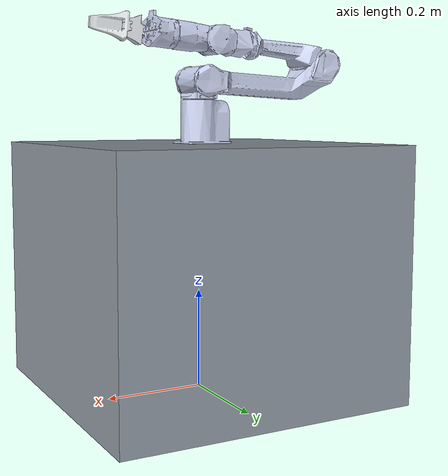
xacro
<?xml version="1.0"?>
<!--
  Gazebo-ready Piper arm + gripper with gz_ros2_control hooks.
  All mesh refs use absolute file:// paths so it works without ROS package install.
-->
<robot name="piper_gz" xmlns:xacro="http://www.ros.org/wiki/xacro">

  <xacro:arg name="prefix" default=""/>
  <xacro:property name="MESH" value="file:///data/nedo/sim/assets/piper_isaac_sim/piper_description/meshes"/>

  <xacro:property name="effort_limit" value="100"/>
  <xacro:property name="velocity_limit" value="2.5"/>

  <xacro:property name="j1_lo" value="-2.618"/>
  <xacro:property name="j1_hi" value="2.618"/>
  <xacro:property name="j2_lo" value="0"/>
  <xacro:property name="j2_hi" value="3.14"/>
  <xacro:property name="j3_lo" value="-2.967"/>
  <xacro:property name="j3_hi" value="0"/>
  <xacro:property name="j4_lo" value="-1.745"/>
  <xacro:property name="j4_hi" value="1.745"/>
  <xacro:property name="j5_lo" value="-1.22"/>
  <xacro:property name="j5_hi" value="1.22"/>
  <xacro:property name="j6_lo" value="-2.0944"/>
  <xacro:property name="j6_hi" value="2.0944"/>

  <xacro:property name="grip_stroke" value="0.04"/>

  <!-- root: pedestal (proxy for Mobile Mover) -->
  <link name="world"/>

  <link name="pedestal">
    <inertial>
      <origin xyz="0 0 0.25" rpy="0 0 0"/>
      <mass value="40"/>
      <inertia ixx="2.0" ixy="0" ixz="0" iyy="2.0" iyz="0" izz="2.0"/>
    </inertial>
    <visual>
      <origin xyz="0 0 0.25" rpy="0 0 0"/>
      <geometry>
        <box size="0.6 0.6 0.5"/>
      </geometry>
      <material name="mm_silver">
        <color rgba="0.55 0.58 0.62 1"/>
      </material>
    </visual>
    <collision>
      <origin xyz="0 0 0.25" rpy="0 0 0"/>
      <geometry>
        <box size="0.6 0.6 0.5"/>
      </geometry>
    </collision>
  </link>

  <joint name="world_to_pedestal" type="fixed">
    <origin xyz="0 0 0" rpy="0 0 0"/>
    <parent link="world"/>
    <child link="pedestal"/>
  </joint>

  <!-- Piper base mounted on pedestal top -->
  <link name="base_link">
    <inertial>
      <origin xyz="-0.00473641164191482 2.56829134630247E-05 0.041451518036016" rpy="0 0 0"/>
      <mass value="1.02"/>
      <inertia ixx="0.00267433" ixy="-0.00000073" ixz="-0.00017389"
               iyy="0.00282612" iyz="0.0000004" izz="0.00089624"/>
    </inertial>
    <visual>
      <geometry><mesh filename="${MESH}/base_link.STL"/></geometry>
      <material name="piper_body"><color rgba="0.79 0.82 0.93 1"/></material>
    </visual>
    <collision>
      <geometry><mesh filename="${MESH}/base_link.STL"/></geometry>
    </collision>
  </link>

  <joint name="pedestal_to_base" type="fixed">
    <origin xyz="0 0 0.5" rpy="0 0 0"/>
    <parent link="pedestal"/>
    <child link="base_link"/>
  </joint>

  <link name="link1">
    <inertial>
      <origin xyz="0.00032 -0.00041 -0.00348" rpy="0 0 0"/>
      <mass value="0.71"/>
      <inertia ixx="0.00050027" ixy="0.00000078" ixz="0.00000626"
               iyy="0.00040879" iyz="0.00000462" izz="0.00045802"/>
    </inertial>
    <visual><geometry><mesh filename="${MESH}/link1.STL"/></geometry>
      <material name="piper_body"><color rgba="0.79 0.82 0.93 1"/></material></visual>
    <collision><geometry><mesh filename="${MESH}/link1.STL"/></geometry></collision>
  </link>
  <joint name="joint1" type="revolute">
    <origin xyz="0 0 0.123" rpy="0 0 0"/>
    <parent link="base_link"/><child link="link1"/>
    <axis xyz="0 0 1"/>
    <limit lower="${j1_lo}" upper="${j1_hi}" effort="${effort_limit}" velocity="${velocity_limit}"/>
    <dynamics damping="0.5" friction="0.1"/>
  </joint>

  <link name="link2">
    <inertial>
      <origin xyz="0.21852 -0.00861 0.00126" rpy="0 0 0"/>
      <mass value="1.16"/>
      <inertia ixx="0.00111915" ixy="0.00182916" ixz="0.00019233"
               iyy="0.06763251" iyz="0.00000767" izz="0.067559"/>
    </inertial>
    <visual><geometry><mesh filename="${MESH}/link2.STL"/></geometry>
      <material name="piper_body"><color rgba="0.79 0.82 0.93 1"/></material></visual>
    <collision><geometry><mesh filename="${MESH}/link2.STL"/></geometry></collision>
  </link>
  <joint name="joint2" type="revolute">
    <origin xyz="0 0 0" rpy="1.5708 -0.1359 -3.1416"/>
    <parent link="link1"/><child link="link2"/>
    <axis xyz="0 0 1"/>
    <limit lower="${j2_lo}" upper="${j2_hi}" effort="${effort_limit}" velocity="${velocity_limit}"/>
    <dynamics damping="0.5" friction="0.1"/>
  </joint>

  <link name="link3">
    <inertial>
      <origin xyz="-0.01999 -0.14808 -0.00053" rpy="0 0 0"/>
      <mass value="0.5"/>
      <inertia ixx="0.01347608" ixy="0.00161034" ixz="0.00000066"
               iyy="0.00046377" iyz="0.00000162" izz="0.01363321"/>
    </inertial>
    <visual><geometry><mesh filename="${MESH}/link3.STL"/></geometry>
      <material name="piper_body"><color rgba="0.79 0.82 0.93 1"/></material></visual>
    <collision><geometry><mesh filename="${MESH}/link3.STL"/></geometry></collision>
  </link>
  <joint name="joint3" type="revolute">
    <origin xyz="0.28503 0 0" rpy="0 0 -1.7939"/>
    <parent link="link2"/><child link="link3"/>
    <axis xyz="0 0 1"/>
    <limit lower="${j3_lo}" upper="${j3_hi}" effort="${effort_limit}" velocity="${velocity_limit}"/>
    <dynamics damping="0.5" friction="0.1"/>
  </joint>

  <link name="link4">
    <inertial>
      <origin xyz="0.00013 -0.00076 -0.00394" rpy="0 0 0"/>
      <mass value="0.38"/>
      <inertia ixx="0.00017844" ixy="0.00000062" ixz="0.00000067"
               iyy="0.00018914" iyz="0.00000408" izz="0.00014613"/>
    </inertial>
    <visual><geometry><mesh filename="${MESH}/link4.STL"/></geometry>
      <material name="piper_body"><color rgba="0.79 0.82 0.93 1"/></material></visual>
    <collision><geometry><mesh filename="${MESH}/link4.STL"/></geometry></collision>
  </link>
  <joint name="joint4" type="revolute">
    <origin xyz="-0.021984 -0.25075 0" rpy="1.5708 0 0"/>
    <parent link="link3"/><child link="link4"/>
    <axis xyz="0 0 1"/>
    <limit lower="${j4_lo}" upper="${j4_hi}" effort="${effort_limit}" velocity="${velocity_limit}"/>
    <dynamics damping="0.3" friction="0.05"/>
  </joint>

  <link name="link5">
    <inertial>
      <origin xyz="0.00018 -0.06104 -0.00227" rpy="0 0 0"/>
      <mass value="0.39"/>
      <inertia ixx="0.00172318" ixy="0.00000259" ixz="0.00000010"
               iyy="0.00017936" iyz="0.00000990" izz="0.00171172"/>
    </inertial>
    <visual><geometry><mesh filename="${MESH}/link5.STL"/></geometry>
      <material name="piper_body"><color rgba="0.79 0.82 0.93 1"/></material></visual>
    <collision><geometry><mesh filename="${MESH}/link5.STL"/></geometry></collision>
  </link>
  <joint name="joint5" type="revolute">
    <origin xyz="0 0 0" rpy="-1.5708 0 0"/>
    <parent link="link4"/><child link="link5"/>
    <axis xyz="0 0 1"/>
    <limit lower="${j5_lo}" upper="${j5_hi}" effort="${effort_limit}" velocity="${velocity_limit}"/>
    <dynamics damping="0.3" friction="0.05"/>
  </joint>

  <link name="link6">
    <inertial>
      <origin xyz="-0.00003 0.00006 0.04618" rpy="0 0 0"/>
      <mass value="0.46"/>
      <inertia ixx="0.00152112" ixy="0.00000202" ixz="0.00000261"
               iyy="0.00138626" iyz="0.00000002" izz="0.00031152"/>
    </inertial>
    <visual><geometry><mesh filename="${MESH}/link6.STL"/></geometry>
      <material name="piper_eef"><color rgba="0.90 0.92 0.93 1"/></material></visual>
    <collision><geometry><mesh filename="${MESH}/link6.STL"/></geometry></collision>
  </link>
  <joint name="joint6" type="revolute">
    <origin xyz="8.8259E-05 -0.091 0" rpy="1.5708 0 0"/>
    <parent link="link5"/><child link="link6"/>
    <axis xyz="0 0 1"/>
    <limit lower="${j6_lo}" upper="${j6_hi}" effort="${effort_limit}" velocity="${velocity_limit}"/>
    <dynamics damping="0.3" friction="0.05"/>
  </joint>

  <!-- Gripper base -->
  <link name="gripper_base">
    <inertial>
      <origin xyz="-0.000183807 8.0503e-05 0.0321437" rpy="0 0 0"/>
      <mass value="0.45"/>
      <inertia ixx="0.00092934" ixy="0" ixz="0" iyy="0.00071447" iyz="0" izz="0.00039442"/>
    </inertial>
    <visual><geometry><mesh filename="${MESH}/gripper_base.STL"/></geometry>
      <material name="piper_body"><color rgba="0.79 0.82 0.93 1"/></material></visual>
    <collision><geometry><mesh filename="${MESH}/gripper_base.STL"/></geometry></collision>
  </link>
  <joint name="gripper_fixed" type="fixed">
    <origin xyz="0 0 0" rpy="0 0 0"/>
    <parent link="link6"/><child link="gripper_base"/>
  </joint>

  <link name="left_finger">
    <inertial>
      <origin xyz="0.00065 -0.0492 0.00972" rpy="0 0 0"/>
      <mass value="0.025"/>
      <inertia ixx="0.00007371" ixy="0" ixz="0" iyy="0.0000747" iyz="0" izz="0.0000747"/>
    </inertial>
    <visual><geometry><mesh filename="${MESH}/link7.STL"/></geometry>
      <material name="piper_eef"><color rgba="0.90 0.92 0.93 1"/></material></visual>
    <collision><geometry><mesh filename="${MESH}/link7.STL"/></geometry></collision>
  </link>
  <joint name="gripper_left" type="prismatic">
    <origin xyz="0 0 0.1358" rpy="1.5708 0 0"/>
    <parent link="gripper_base"/><child link="left_finger"/>
    <axis xyz="0 0 1"/>
    <limit lower="0" upper="${grip_stroke}" effort="20" velocity="1.0"/>
    <dynamics damping="2.0" friction="0.5"/>
  </joint>

  <link name="right_finger">
    <inertial>
      <origin xyz="0.00065 -0.0492 0.00972" rpy="0 0 0"/>
      <mass value="0.025"/>
      <inertia ixx="0.00007371" ixy="0" ixz="0" iyy="0.0000747" iyz="0" izz="0.0000747"/>
    </inertial>
    <visual><geometry><mesh filename="${MESH}/link8.STL"/></geometry>
      <material name="piper_eef"><color rgba="0.90 0.92 0.93 1"/></material></visual>
    <collision><geometry><mesh filename="${MESH}/link8.STL"/></geometry></collision>
  </link>
  <!-- Right finger fixed at open position. Demo grasp uses DetachableJoint,
       so single-finger animation is enough; avoids ros2_control mimic woes. -->
  <joint name="gripper_right" type="fixed">
    <origin xyz="0 0 0.1758" rpy="1.5708 0 -3.1416"/>
    <parent link="gripper_base"/><child link="right_finger"/>
  </joint>

  <!-- TCP frame -->
  <link name="tcp">
    <inertial>
      <mass value="0.001"/>
      <inertia ixx="1e-6" ixy="0" ixz="0" iyy="1e-6" iyz="0" izz="1e-6"/>
    </inertial>
  </link>
  <joint name="tcp_joint" type="fixed">
    <origin xyz="0 0 0.18" rpy="0 0 0"/>
    <parent link="gripper_base"/><child link="tcp"/>
  </joint>

  <!-- ros2_control -->
  <ros2_control name="GazeboSimSystem" type="system">
    <hardware>
      <plugin>gz_ros2_control/GazeboSimSystem</plugin>
    </hardware>
    <joint name="joint1">
      <command_interface name="position"><param name="min">${j1_lo}</param><param name="max">${j1_hi}</param></command_interface>
      <state_interface name="position"><param name="initial_value">0.0</param></state_interface>
      <state_interface name="velocity"/>
    </joint>
    <joint name="joint2">
      <command_interface name="position"><param name="min">${j2_lo}</param><param name="max">${j2_hi}</param></command_interface>
      <state_interface name="position"><param name="initial_value">1.2</param></state_interface>
      <state_interface name="velocity"/>
    </joint>
    <joint name="joint3">
      <command_interface name="position"><param name="min">${j3_lo}</param><param name="max">${j3_hi}</param></command_interface>
      <state_interface name="position"><param name="initial_value">-1.2</param></state_interface>
      <state_interface name="velocity"/>
    </joint>
    <joint name="joint4">
      <command_interface name="position"><param name="min">${j4_lo}</param><param name="max">${j4_hi}</param></command_interface>
      <state_interface name="position"><param name="initial_value">0.0</param></state_interface>
      <state_interface name="velocity"/>
    </joint>
    <joint name="joint5">
      <command_interface name="position"><param name="min">${j5_lo}</param><param name="max">${j5_hi}</param></command_interface>
      <state_interface name="position"><param name="initial_value">0.6</param></state_interface>
      <state_interface name="velocity"/>
    </joint>
    <joint name="joint6">
      <command_interface name="position"><param name="min">${j6_lo}</param><param name="max">${j6_hi}</param></command_interface>
      <state_interface name="position"><param name="initial_value">0.0</param></state_interface>
      <state_interface name="velocity"/>
    </joint>
    <joint name="gripper_left">
      <command_interface name="position"><param name="min">0</param><param name="max">${grip_stroke}</param></command_interface>
      <state_interface name="position"><param name="initial_value">${grip_stroke}</param></state_interface>
      <state_interface name="velocity"/>
    </joint>
  </ros2_control>

  <gazebo>
    <plugin filename="gz_ros2_control-system" name="gz_ros2_control::GazeboSimROS2ControlPlugin">
      <parameters>/data/nedo/gazebo_sim/config/piper_controllers.yaml</parameters>
    </plugin>
  </gazebo>

  <!-- Pedestal material -->
  <gazebo reference="pedestal">
    <visual>
      <material>
        <ambient>0.40 0.42 0.45 1</ambient>
        <diffuse>0.55 0.58 0.62 1</diffuse>
        <specular>0.3 0.3 0.3 1</specular>
      </material>
    </visual>
  </gazebo>

</robot>
